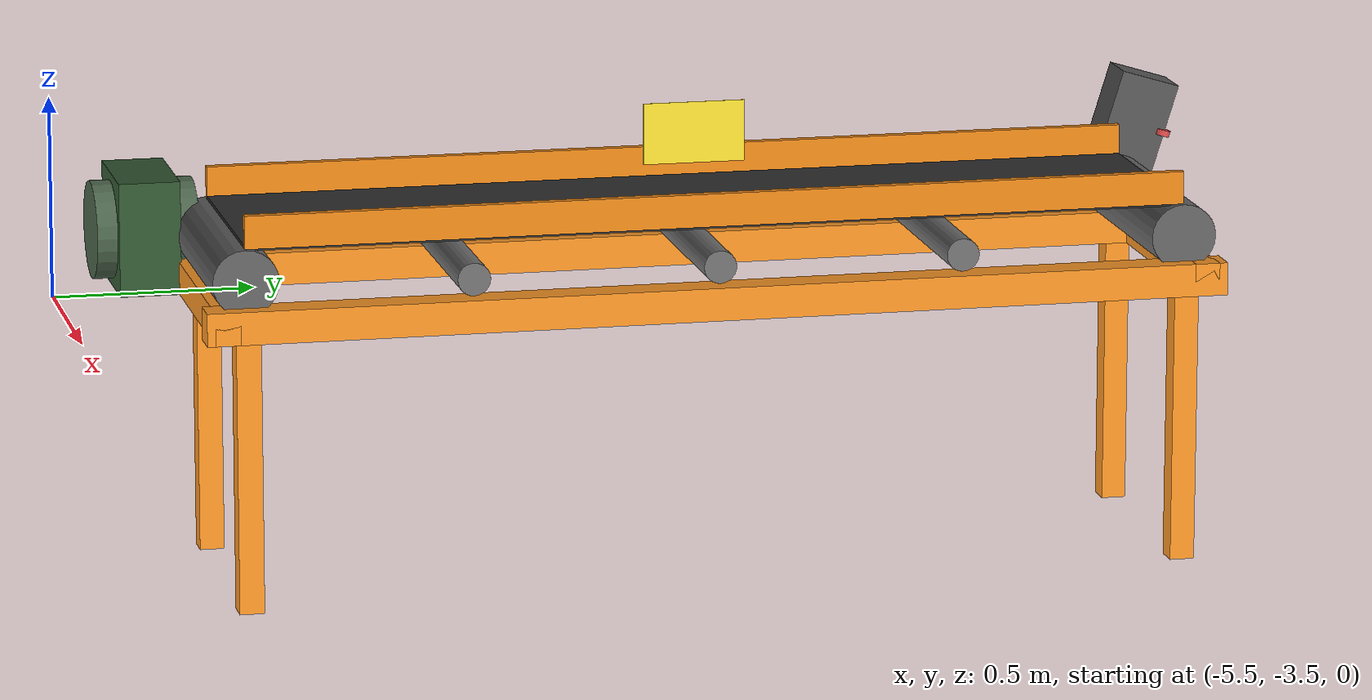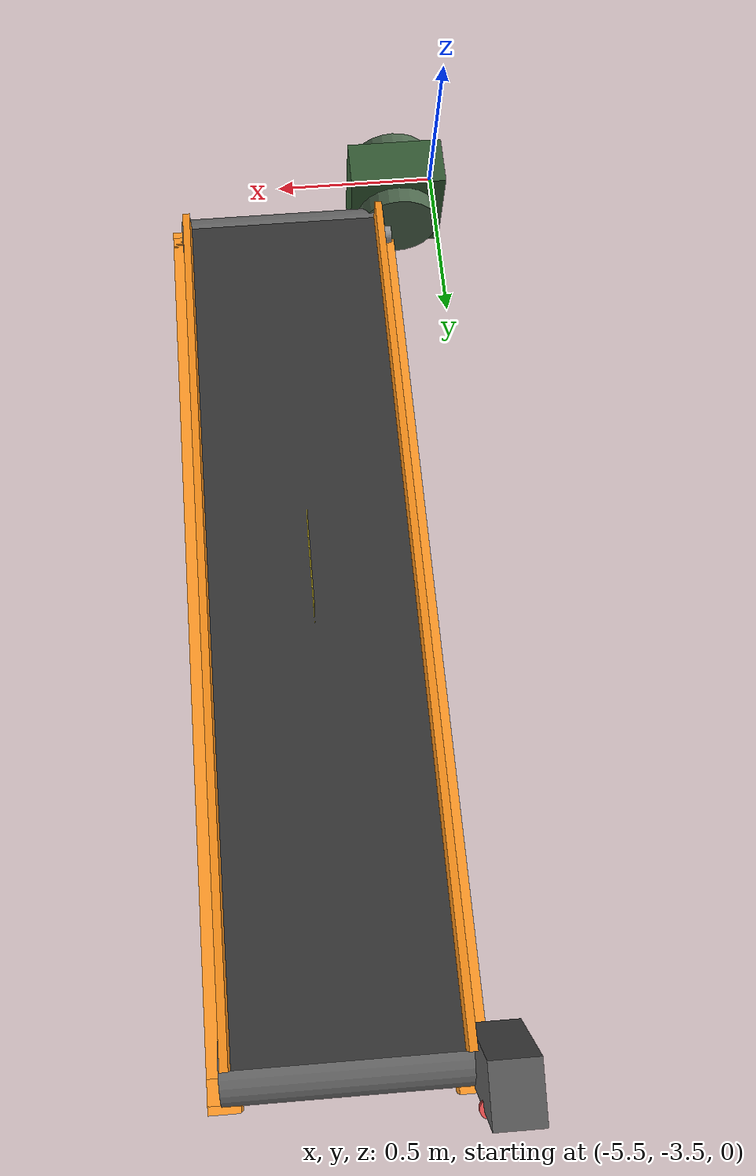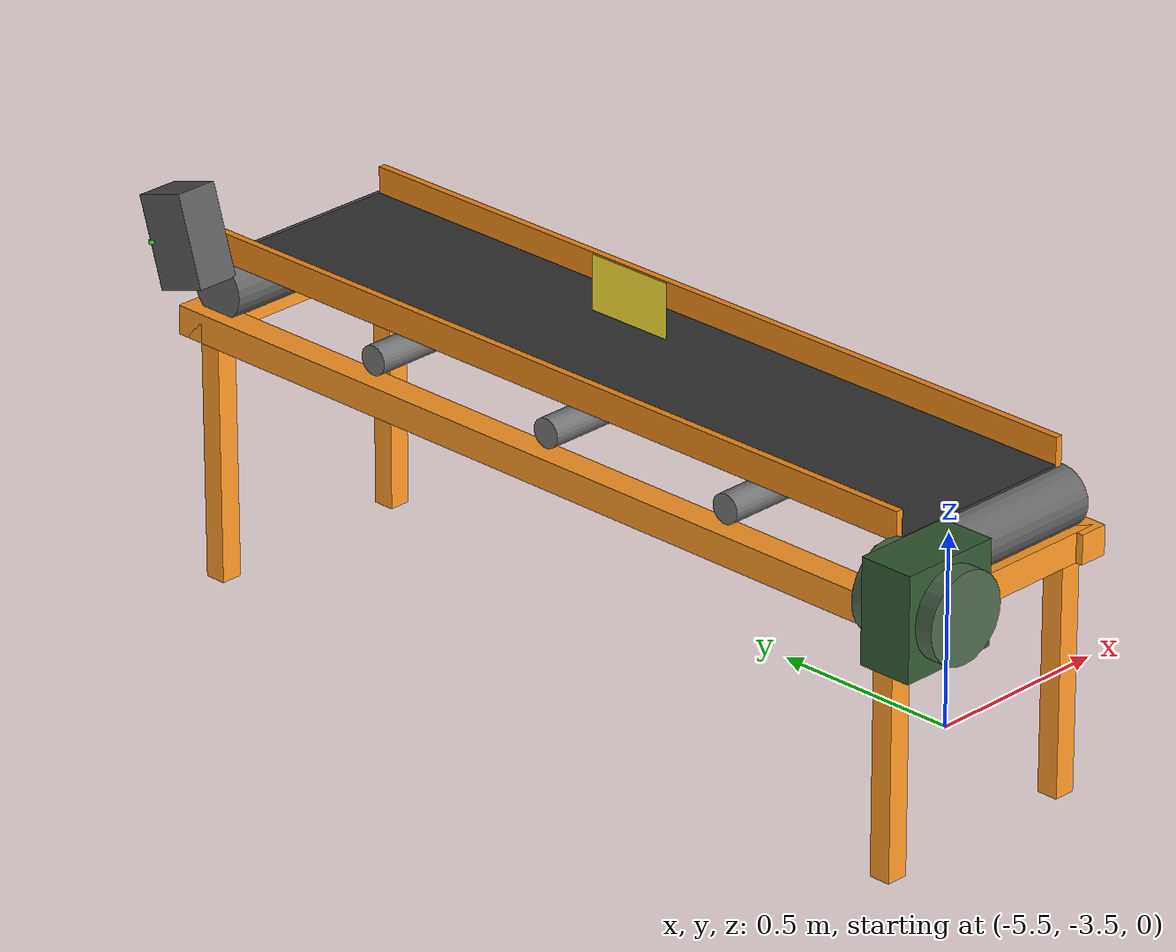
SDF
<?xml version="1.0"?>
<sdf version="1.6">
  <model name="conveyor_belt">
    <pose>-5 -2 0.1 0 0 1.57</pose>
    <static>false</static>

    <!-- STRUTTURA BASE -->
    <link name="frame">
      <pose>0 0 0 0 0 0</pose>
      <inertial>
        <mass>150.0</mass>
        <inertia>
          <ixx>15.0</ixx>
          <iyy>15.0</iyy>
          <izz>20.0</izz>
        </inertia>
      </inertial>

      <!-- Base sinistra -->
      <visual name="base_left">
        <pose>0 0.3 0 0 0 0</pose>
        <geometry>
          <box>
            <size>2.5 0.08 0.08</size>
          </box>
        </geometry>
        <material>
          <ambient>0.9 0.5 0.1 1</ambient>
          <diffuse>1.0 0.6 0.15 1</diffuse>
        </material>
      </visual>

      <!-- Base destra -->
      <visual name="base_right">
        <pose>0 -0.3 0 0 0 0</pose>
        <geometry>
          <box>
            <size>2.5 0.08 0.08</size>
          </box>
        </geometry>
        <material>
          <ambient>0.9 0.5 0.1 1</ambient>
          <diffuse>1.0 0.6 0.15 1</diffuse>
        </material>
      </visual>

      <!-- Traversa anteriore -->
      <visual name="crossbar_front">
        <pose>1.2 0 0 0 0 0</pose>
        <geometry>
          <box>
            <size>0.06 0.68 0.08</size>
          </box>
        </geometry>
        <material>
          <ambient>0.9 0.5 0.1 1</ambient>
          <diffuse>1.0 0.6 0.15 1</diffuse>
        </material>
      </visual>

      <!-- Traversa posteriore -->
      <visual name="crossbar_back">
        <pose>-1.2 0 0 0 0 0</pose>
        <geometry>
          <box>
            <size>0.06 0.68 0.08</size>
          </box>
        </geometry>
        <material>
          <ambient>0.9 0.5 0.1 1</ambient>
          <diffuse>1.0 0.6 0.15 1</diffuse>
        </material>
      </visual>

      <!-- Gambe anteriori -->
      <visual name="leg_fl">
        <pose>1.15 0.3 -0.35 0 0 0</pose>
        <geometry>
          <box>
            <size>0.06 0.06 0.7</size>
          </box>
        </geometry>
        <material>
          <ambient>0.9 0.5 0.1 1</ambient>
          <diffuse>1.0 0.6 0.15 1</diffuse>
        </material>
      </visual>

      <visual name="leg_fr">
        <pose>1.15 -0.3 -0.35 0 0 0</pose>
        <geometry>
          <box>
            <size>0.06 0.06 0.7</size>
          </box>
        </geometry>
        <material>
          <ambient>0.9 0.5 0.1 1</ambient>
          <diffuse>1.0 0.6 0.15 1</diffuse>
        </material>
      </visual>

      <!-- Gambe posteriori -->
      <visual name="leg_rl">
        <pose>-1.15 0.3 -0.35 0 0 0</pose>
        <geometry>
          <box>
            <size>0.06 0.06 0.7</size>
          </box>
        </geometry>
        <material>
          <ambient>0.9 0.5 0.1 1</ambient>
          <diffuse>1.0 0.6 0.15 1</diffuse>
        </material>
      </visual>

      <visual name="leg_rr">
        <pose>-1.15 -0.3 -0.35 0 0 0</pose>
        <geometry>
          <box>
            <size>0.06 0.06 0.7</size>
          </box>
        </geometry>
        <material>
          <ambient>0.9 0.5 0.1 1</ambient>
          <diffuse>1.0 0.6 0.15 1</diffuse>
        </material>
      </visual>

      <!-- Rullo anteriore -->
      <visual name="roller_front">
        <pose>1.15 0 0.1 1.5708 0 0</pose>
        <geometry>
          <cylinder>
            <radius>0.08</radius>
            <length>0.6</length>
          </cylinder>
        </geometry>
        <material>
          <ambient>0.3 0.3 0.3 1</ambient>
          <diffuse>0.4 0.4 0.4 1</diffuse>
        </material>
      </visual>

      <!-- Rullo posteriore -->
      <visual name="roller_back">
        <pose>-1.15 0 0.1 1.5708 0 0</pose>
        <geometry>
          <cylinder>
            <radius>0.08</radius>
            <length>0.6</length>
          </cylinder>
        </geometry>
        <material>
          <ambient>0.3 0.3 0.3 1</ambient>
          <diffuse>0.4 0.4 0.4 1</diffuse>
        </material>
      </visual>

      <!-- Rulli di supporto intermedi -->
      <visual name="support_roller1">
        <pose>0.6 0 0.08 1.5708 0 0</pose>
        <geometry>
          <cylinder>
            <radius>0.04</radius>
            <length>0.58</length>
          </cylinder>
        </geometry>
        <material>
          <ambient>0.35 0.35 0.35 1</ambient>
          <diffuse>0.45 0.45 0.45 1</diffuse>
        </material>
      </visual>

      <visual name="support_roller2">
        <pose>0 0 0.08 1.5708 0 0</pose>
        <geometry>
          <cylinder>
            <radius>0.04</radius>
            <length>0.58</length>
          </cylinder>
        </geometry>
        <material>
          <ambient>0.35 0.35 0.35 1</ambient>
          <diffuse>0.45 0.45 0.45 1</diffuse>
        </material>
      </visual>

      <visual name="support_roller3">
        <pose>-0.6 0 0.08 1.5708 0 0</pose>
        <geometry>
          <cylinder>
            <radius>0.04</radius>
            <length>0.58</length>
          </cylinder>
        </geometry>
        <material>
          <ambient>0.35 0.35 0.35 1</ambient>
          <diffuse>0.45 0.45 0.45 1</diffuse>
        </material>
      </visual>

      <!-- Nastro (diviso in segmenti per realismo) -->
      <visual name="belt_top">
        <pose>0 0 0.18 0 0 0</pose>
        <geometry>
          <box>
            <size>2.3 0.55 0.015</size>
          </box>
        </geometry>
        <material>
          <ambient>0.15 0.15 0.15 1</ambient>
          <diffuse>0.2 0.2 0.2 1</diffuse>
        </material>
      </visual>

      <!-- Guide laterali -->
      <visual name="side_guide_left">
        <pose>0 0.28 0.22 0 0 0</pose>
        <geometry>
          <box>
            <size>2.3 0.02 0.08</size>
          </box>
        </geometry>
        <material>
          <ambient>0.85 0.45 0.05 1</ambient>
          <diffuse>0.95 0.55 0.1 1</diffuse>
        </material>
      </visual>

      <visual name="side_guide_right">
        <pose>0 -0.28 0.22 0 0 0</pose>
        <geometry>
          <box>
            <size>2.3 0.02 0.08</size>
          </box>
        </geometry>
        <material>
          <ambient>0.85 0.45 0.05 1</ambient>
          <diffuse>0.95 0.55 0.1 1</diffuse>
        </material>
      </visual>

      <!-- Motore elettrico -->
      <visual name="motor">
        <pose>-1.3 0.35 0.1 0 1.5708 0</pose>
        <geometry>
          <cylinder>
            <radius>0.12</radius>
            <length>0.25</length>
          </cylinder>
        </geometry>
        <material>
          <ambient>0.2 0.3 0.2 1</ambient>
          <diffuse>0.3 0.4 0.3 1</diffuse>
        </material>
      </visual>

      <!-- Copertura motore -->
      <visual name="motor_cover">
        <pose>-1.3 0.35 0.1 0 0 0</pose>
        <geometry>
          <box>
            <size>0.15 0.28 0.28</size>
          </box>
        </geometry>
        <material>
          <ambient>0.15 0.25 0.15 1</ambient>
          <diffuse>0.2 0.35 0.2 1</diffuse>
        </material>
      </visual>

      <!-- Albero di trasmissione -->
      <visual name="drive_shaft">
        <pose>-1.15 0.25 0.1 1.5708 0 0</pose>
        <geometry>
          <cylinder>
            <radius>0.025</radius>
            <length>0.15</length>
          </cylinder>
        </geometry>
        <material>
          <ambient>0.5 0.5 0.5 1</ambient>
          <diffuse>0.6 0.6 0.6 1</diffuse>
        </material>
      </visual>

      <!-- Puleggia motore -->
      <visual name="motor_pulley">
        <pose>-1.15 0.18 0.1 1.5708 0 0</pose>
        <geometry>
          <cylinder>
            <radius>0.06</radius>
            <length>0.05</length>
          </cylinder>
        </geometry>
        <material>
          <ambient>0.4 0.4 0.4 1</ambient>
          <diffuse>0.5 0.5 0.5 1</diffuse>
        </material>
      </visual>

      <!-- Cinghia di trasmissione -->
      <visual name="belt_drive">
        <pose>-1.15 0.09 0.1 1.5708 0 0</pose>
        <geometry>
          <cylinder>
            <radius>0.015</radius>
            <length>0.2</length>
          </cylinder>
        </geometry>
        <material>
          <ambient>0.15 0.15 0.15 1</ambient>
          <diffuse>0.2 0.2 0.2 1</diffuse>
        </material>
      </visual>

      <!-- Pannello di controllo -->
      <visual name="control_panel">
        <pose>1.2 0.35 0.25 0 0.3 0</pose>
        <geometry>
          <box>
            <size>0.15 0.12 0.25</size>
          </box>
        </geometry>
        <material>
          <ambient>0.25 0.25 0.25 1</ambient>
          <diffuse>0.35 0.35 0.35 1</diffuse>
        </material>
      </visual>

      <!-- Display -->
      <visual name="display">
        <pose>1.28 0.35 0.3 0 0.3 0</pose>
        <geometry>
          <box>
            <size>0.001 0.08 0.06</size>
          </box>
        </geometry>
        <material>
          <ambient>0.1 0.3 0.5 1</ambient>
          <diffuse>0.2 0.4 0.6 1</diffuse>
          <emissive>0.1 0.2 0.3 1</emissive>
        </material>
      </visual>

      <!-- Pulsanti di controllo -->
      <visual name="button_start">
        <pose>1.27 0.4 0.23 0 0.3 0</pose>
        <geometry>
          <cylinder>
            <radius>0.015</radius>
            <length>0.01</length>
          </cylinder>
        </geometry>
        <material>
          <ambient>0.2 0.8 0.2 1</ambient>
          <diffuse>0.3 0.9 0.3 1</diffuse>
          <emissive>0.1 0.3 0.1 1</emissive>
        </material>
      </visual>

      <visual name="button_stop">
        <pose>1.27 0.3 0.23 0 0.3 0</pose>
        <geometry>
          <cylinder>
            <radius>0.02</radius>
            <length>0.015</length>
          </cylinder>
        </geometry>
        <material>
          <ambient>0.8 0.2 0.2 1</ambient>
          <diffuse>0.9 0.3 0.3 1</diffuse>
          <emissive>0.3 0.1 0.1 1</emissive>
        </material>
      </visual>

      <!-- Spia LED -->
      <visual name="status_led">
        <pose>1.27 0.35 0.35 0 0.3 0</pose>
        <geometry>
          <sphere>
            <radius>0.008</radius>
          </sphere>
        </geometry>
        <material>
          <ambient>0.2 0.8 0.2 1</ambient>
          <diffuse>0.3 0.9 0.3 1</diffuse>
          <emissive>0.2 0.6 0.2 1</emissive>
        </material>
      </visual>

      <!-- Cartello "ATTENZIONE" -->
      <visual name="warning_sign">
        <pose>0 0 0.35 0 0 0</pose>
        <geometry>
          <box>
            <size>0.25 0.001 0.15</size>
          </box>
        </geometry>
        <material>
          <ambient>1.0 0.8 0.0 1</ambient>
          <diffuse>1.0 0.9 0.2 1</diffuse>
        </material>
      </visual>

      <!-- Collision semplificata -->
      <collision name="frame_collision">
        <pose>0 0 0 0 0 0</pose>
        <geometry>
          <box>
            <size>2.5 0.7 0.4</size>
          </box>
        </geometry>
      </collision>

      <collision name="belt_collision">
        <pose>0 0 0.18 0 0 0</pose>
        <geometry>
          <box>
            <size>2.3 0.55 0.015</size>
          </box>
        </geometry>
        <surface>
          <friction>
            <ode>
              <mu>0.8</mu>
              <mu2>0.8</mu2>
            </ode>
          </friction>
        </surface>
      </collision>
    </link>
  </model>
</sdf>
